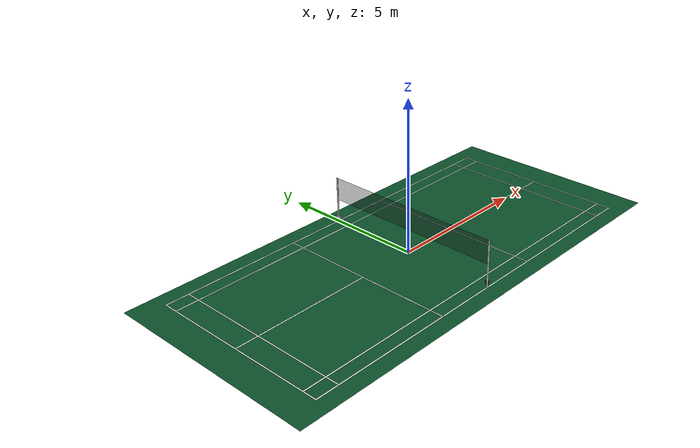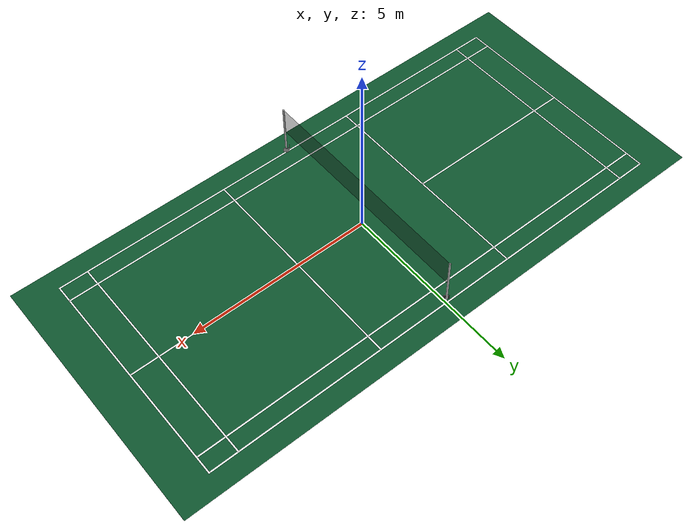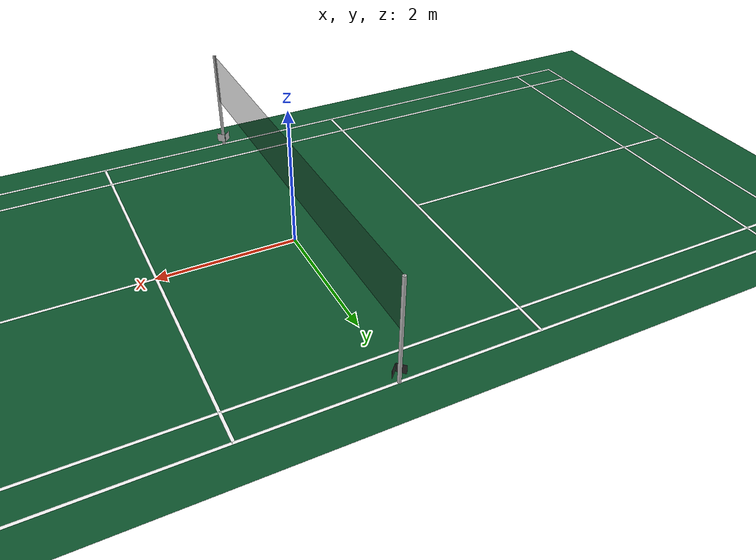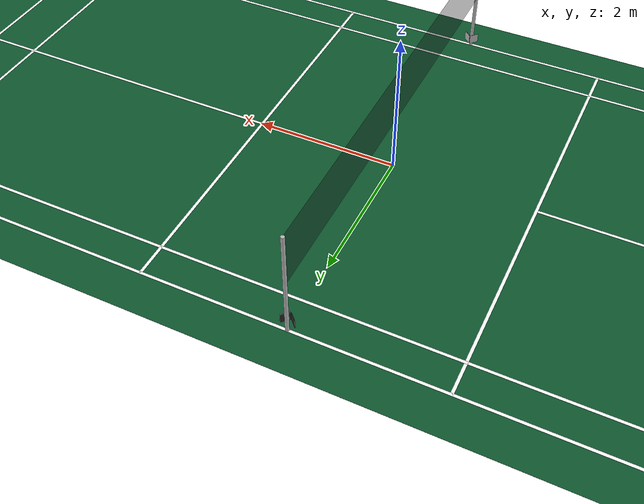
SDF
<?xml version="1.0"?>
<sdf version="1.10">
  <world name="yolo_dataset_native">
    <physics name="dataset_physics" type="ignored">
      <!-- Fine contact step for the 5.2 g shuttle, but run continuously as
           fast as possible. Settled shuttles use allow_auto_disable=true. -->
      <max_step_size>0.001</max_step_size>
      <real_time_factor>0.0</real_time_factor>
    </physics>

    <plugin filename="gz-sim-physics-system" name="gz::sim::systems::Physics"/>
    <plugin filename="gz-sim-user-commands-system" name="gz::sim::systems::UserCommands"/>
    <plugin filename="gz-sim-scene-broadcaster-system" name="gz::sim::systems::SceneBroadcaster"/>
    <plugin filename="gz-sim-sensors-system" name="gz::sim::systems::Sensors">
      <render_engine>ogre2</render_engine>
    </plugin>

    <!-- Let shuttles settle dynamically, then pin only their poses while the
         world and rendering loop continue running normally. -->
    <plugin filename="libdataset_scene_freezer_system.so"
            name="scrobot_debug::DatasetSceneFreezerSystem">
      <model_prefix>yolo_shuttle_</model_prefix>
      <service>/yolo/freeze_shuttles</service>
    </plugin>

    <scene>
      <ambient>0.08 0.08 0.08 1</ambient>
      <background>0.025 0.030 0.035 1</background>
      <shadows>true</shadows>
    </scene>

    <!-- Same six-side-light configuration as the simulation dataset world. -->
    <light type="spot" name="court_light_left_1">
      <pose>-4.5 4.6 7.0 0 0 0</pose>
      <diffuse>0.95 0.95 0.92 1</diffuse>
      <specular>0.20 0.20 0.20 1</specular>
      <direction>0 -0.55 -0.84</direction>
      <attenuation><range>18</range><constant>0.45</constant><linear>0.015</linear><quadratic>0.001</quadratic></attenuation>
      <spot><inner_angle>0.70</inner_angle><outer_angle>1.20</outer_angle><falloff>0.80</falloff></spot>
      <cast_shadows>true</cast_shadows>
    </light>
    <light type="spot" name="court_light_left_2">
      <pose>0 4.6 7.0 0 0 0</pose>
      <diffuse>0.95 0.95 0.92 1</diffuse>
      <specular>0.20 0.20 0.20 1</specular>
      <direction>0 -0.55 -0.84</direction>
      <attenuation><range>18</range><constant>0.45</constant><linear>0.015</linear><quadratic>0.001</quadratic></attenuation>
      <spot><inner_angle>0.70</inner_angle><outer_angle>1.20</outer_angle><falloff>0.80</falloff></spot>
      <cast_shadows>true</cast_shadows>
    </light>
    <light type="spot" name="court_light_left_3">
      <pose>4.5 4.6 7.0 0 0 0</pose>
      <diffuse>0.95 0.95 0.92 1</diffuse>
      <specular>0.20 0.20 0.20 1</specular>
      <direction>0 -0.55 -0.84</direction>
      <attenuation><range>18</range><constant>0.45</constant><linear>0.015</linear><quadratic>0.001</quadratic></attenuation>
      <spot><inner_angle>0.70</inner_angle><outer_angle>1.20</outer_angle><falloff>0.80</falloff></spot>
      <cast_shadows>true</cast_shadows>
    </light>
    <light type="spot" name="court_light_right_1">
      <pose>-4.5 -4.6 7.0 0 0 0</pose>
      <diffuse>0.95 0.95 0.92 1</diffuse>
      <specular>0.20 0.20 0.20 1</specular>
      <direction>0 0.55 -0.84</direction>
      <attenuation><range>18</range><constant>0.45</constant><linear>0.015</linear><quadratic>0.001</quadratic></attenuation>
      <spot><inner_angle>0.70</inner_angle><outer_angle>1.20</outer_angle><falloff>0.80</falloff></spot>
      <cast_shadows>true</cast_shadows>
    </light>
    <light type="spot" name="court_light_right_2">
      <pose>0 -4.6 7.0 0 0 0</pose>
      <diffuse>0.95 0.95 0.92 1</diffuse>
      <specular>0.20 0.20 0.20 1</specular>
      <direction>0 0.55 -0.84</direction>
      <attenuation><range>18</range><constant>0.45</constant><linear>0.015</linear><quadratic>0.001</quadratic></attenuation>
      <spot><inner_angle>0.70</inner_angle><outer_angle>1.20</outer_angle><falloff>0.80</falloff></spot>
      <cast_shadows>true</cast_shadows>
    </light>
    <light type="spot" name="court_light_right_3">
      <pose>4.5 -4.6 7.0 0 0 0</pose>
      <diffuse>0.95 0.95 0.92 1</diffuse>
      <specular>0.20 0.20 0.20 1</specular>
      <direction>0 0.55 -0.84</direction>
      <attenuation><range>18</range><constant>0.45</constant><linear>0.015</linear><quadratic>0.001</quadratic></attenuation>
      <spot><inner_angle>0.70</inner_angle><outer_angle>1.20</outer_angle><falloff>0.80</falloff></spot>
      <cast_shadows>true</cast_shadows>
    </light>

    <model name="dataset_court">
      <static>true</static>
      <link name="court_link">
        <visual name="mat">
          <pose>0 0 -0.001 0 0 0</pose>
          <geometry><box><size>15.4 7.2 0.002</size></box></geometry>
          <material><ambient>0.045 0.265 0.145 1</ambient><diffuse>0.055 0.345 0.185 1</diffuse></material>
        </visual>
        <collision name="court_collision">
          <pose>0 0 -0.006 0 0 0</pose>
          <geometry><box><size>15.4 7.2 0.01</size></box></geometry>
          <surface>
            <friction>
              <ode><mu>0.9</mu><mu2>0.9</mu2></ode>
            </friction>
            <bounce><restitution_coefficient>0.0</restitution_coefficient></bounce>
          </surface>
        </collision>
        <visual name="line_y_p305"><pose>0 3.05 0.001 0 0 0</pose><geometry><box><size>13.44 0.04 0.002</size></box></geometry><material><ambient>1 1 1 1</ambient><diffuse>1 1 1 1</diffuse></material></visual>
        <visual name="line_y_n305"><pose>0 -3.05 0.001 0 0 0</pose><geometry><box><size>13.44 0.04 0.002</size></box></geometry><material><ambient>1 1 1 1</ambient><diffuse>1 1 1 1</diffuse></material></visual>
        <visual name="line_y_p259"><pose>0 2.59 0.001 0 0 0</pose><geometry><box><size>13.40 0.04 0.002</size></box></geometry><material><ambient>1 1 1 1</ambient><diffuse>1 1 1 1</diffuse></material></visual>
        <visual name="line_y_n259"><pose>0 -2.59 0.001 0 0 0</pose><geometry><box><size>13.40 0.04 0.002</size></box></geometry><material><ambient>1 1 1 1</ambient><diffuse>1 1 1 1</diffuse></material></visual>
        <visual name="line_x_p670"><pose>6.70 0 0.001 0 0 0</pose><geometry><box><size>0.04 6.14 0.002</size></box></geometry><material><ambient>1 1 1 1</ambient><diffuse>1 1 1 1</diffuse></material></visual>
        <visual name="line_x_n670"><pose>-6.70 0 0.001 0 0 0</pose><geometry><box><size>0.04 6.14 0.002</size></box></geometry><material><ambient>1 1 1 1</ambient><diffuse>1 1 1 1</diffuse></material></visual>
        <visual name="line_x_p198"><pose>1.98 0 0.001 0 0 0</pose><geometry><box><size>0.04 6.10 0.002</size></box></geometry><material><ambient>1 1 1 1</ambient><diffuse>1 1 1 1</diffuse></material></visual>
        <visual name="line_x_n198"><pose>-1.98 0 0.001 0 0 0</pose><geometry><box><size>0.04 6.10 0.002</size></box></geometry><material><ambient>1 1 1 1</ambient><diffuse>1 1 1 1</diffuse></material></visual>
        <visual name="line_x_p594"><pose>5.94 0 0.001 0 0 0</pose><geometry><box><size>0.04 6.10 0.002</size></box></geometry><material><ambient>1 1 1 1</ambient><diffuse>1 1 1 1</diffuse></material></visual>
        <visual name="line_x_n594"><pose>-5.94 0 0.001 0 0 0</pose><geometry><box><size>0.04 6.10 0.002</size></box></geometry><material><ambient>1 1 1 1</ambient><diffuse>1 1 1 1</diffuse></material></visual>
        <visual name="center_p"><pose>4.34 0 0.001 0 0 0</pose><geometry><box><size>4.72 0.04 0.002</size></box></geometry><material><ambient>1 1 1 1</ambient><diffuse>1 1 1 1</diffuse></material></visual>
        <visual name="center_n"><pose>-4.34 0 0.001 0 0 0</pose><geometry><box><size>4.72 0.04 0.002</size></box></geometry><material><ambient>1 1 1 1</ambient><diffuse>1 1 1 1</diffuse></material></visual>
      </link>
    </model>

    <model name="net_assembly">
      <static>true</static>
      <link name="net_link">
        <visual name="left_post"><pose>0 3.05 0.775 0 0 0</pose><geometry><cylinder><radius>0.025</radius><length>1.55</length></cylinder></geometry></visual>
        <visual name="right_post"><pose>0 -3.05 0.775 0 0 0</pose><geometry><cylinder><radius>0.025</radius><length>1.55</length></cylinder></geometry></visual>
        <visual name="net"><pose>0 0 1.17 0 0 0</pose><geometry><box><size>0.005 6.10 0.76</size></box></geometry><material><ambient>0.05 0.05 0.05 1</ambient><diffuse>0.05 0.05 0.05 1</diffuse></material><transparency>0.65</transparency></visual>
      </link>
    </model>

    <include><uri>model://court_apriltags</uri></include>
    <include>
      <uri>model://yolo_bbox_camera_rig</uri>
      <name>yolo_bbox_camera_rig</name>
      <pose>2.0 0 0.28683059 0 0.2617993877991494 0</pose>
    </include>
  </world>
</sdf>

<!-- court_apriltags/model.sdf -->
<sdf version="1.9">
  <model name="court_apriltags">
    <static>true</static>

    <link name="tag_mount_0">
      <pose>0.053033009 2.996966991 0.150000000 0 0 -0.785398163</pose>
      <visual name="backing">
        <pose>-0.001750 0 0 0 0 0</pose>
        <geometry><box><size>0.003000 0.133333333 0.133333333</size></box></geometry>
        <material><ambient>0.15 0.15 0.15 1</ambient><diffuse>0.15 0.15 0.15 1</diffuse><specular>0 0 0 1</specular></material>
      </visual>
      <visual name="tag_texture"><geometry><mesh><uri>model://court_apriltags/meshes/tag_0.obj</uri></mesh></geometry></visual>
    </link>

    <link name="tag_mount_1">
      <pose>0.053033009 -2.996966991 0.150000000 0 0 0.785398163</pose>
      <visual name="backing">
        <pose>-0.001750 0 0 0 0 0</pose>
        <geometry><box><size>0.003000 0.133333333 0.133333333</size></box></geometry>
        <material><ambient>0.15 0.15 0.15 1</ambient><diffuse>0.15 0.15 0.15 1</diffuse><specular>0 0 0 1</specular></material>
      </visual>
      <visual name="tag_texture"><geometry><mesh><uri>model://court_apriltags/meshes/tag_1.obj</uri></mesh></geometry></visual>
    </link>

    <link name="tag_mount_2">
      <pose>-0.053033009 2.996966991 0.150000000 0 0 -2.356194490</pose>
      <visual name="backing">
        <pose>-0.001750 0 0 0 0 0</pose>
        <geometry><box><size>0.003000 0.133333333 0.133333333</size></box></geometry>
        <material><ambient>0.15 0.15 0.15 1</ambient><diffuse>0.15 0.15 0.15 1</diffuse><specular>0 0 0 1</specular></material>
      </visual>
      <visual name="tag_texture"><geometry><mesh><uri>model://court_apriltags/meshes/tag_2.obj</uri></mesh></geometry></visual>
    </link>

    <link name="tag_mount_3">
      <pose>-0.053033009 -2.996966991 0.150000000 0 0 2.356194490</pose>
      <visual name="backing">
        <pose>-0.001750 0 0 0 0 0</pose>
        <geometry><box><size>0.003000 0.133333333 0.133333333</size></box></geometry>
        <material><ambient>0.15 0.15 0.15 1</ambient><diffuse>0.15 0.15 0.15 1</diffuse><specular>0 0 0 1</specular></material>
      </visual>
      <visual name="tag_texture"><geometry><mesh><uri>model://court_apriltags/meshes/tag_3.obj</uri></mesh></geometry></visual>
    </link>

  </model>
</sdf>

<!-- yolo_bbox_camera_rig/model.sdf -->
<sdf version="1.10">
  <model name="yolo_bbox_camera_rig">
    <static>true</static>
    <link name="camera_frame">

      <!-- Clean training RGB. -->
      <sensor name="d435i_dataset_rgb" type="camera">
        <always_on>true</always_on>
        <update_rate>60.0</update_rate>
        <topic>/yolo/rgb</topic>
        <camera>
          <triggered>true</triggered>
          <trigger_topic>/yolo/capture/trigger</trigger_topic>
          <horizontal_fov>1.229041640167034</horizontal_fov>
          <image>
            <width>1280</width>
            <height>720</height>
            <format>R8G8B8</format>
          </image>
          <clip><near>0.05</near><far>20.0</far></clip>
        </camera>
      </sensor>

      <!-- Native Gazebo boxes from the same pose / scene. -->
      <sensor name="d435i_dataset_bbox" type="boundingbox_camera">
        <always_on>true</always_on>
        <update_rate>60.0</update_rate>
        <topic>/yolo/bbox</topic>
        <camera>
          <triggered>true</triggered>
          <trigger_topic>/yolo/capture/trigger</trigger_topic>
          <box_type>visible_2d</box_type>
          <horizontal_fov>1.229041640167034</horizontal_fov>
          <image>
            <width>1280</width>
            <height>720</height>
            <format>R8G8B8</format>
          </image>
          <clip><near>0.05</near><far>20.0</far></clip>
        </camera>
      </sensor>

    </link>
  </model>
</sdf>
